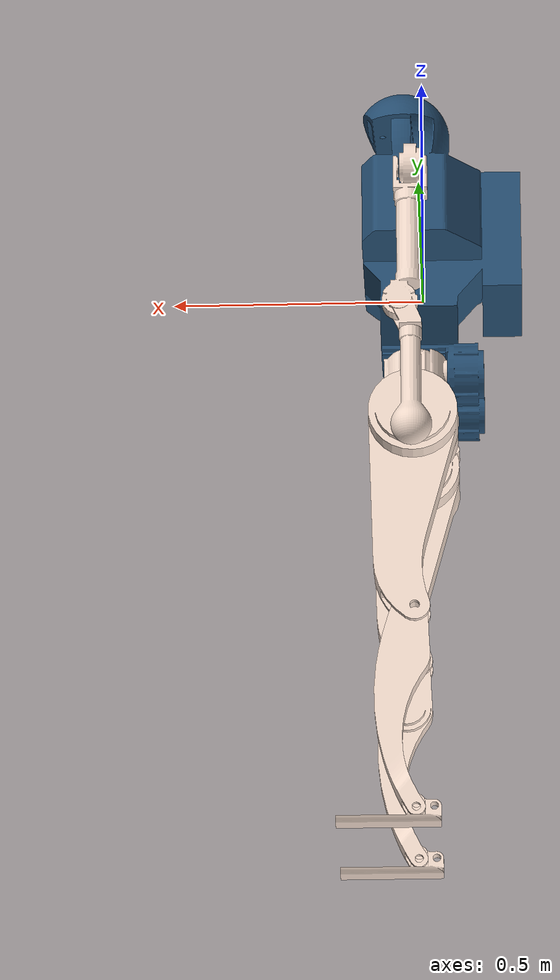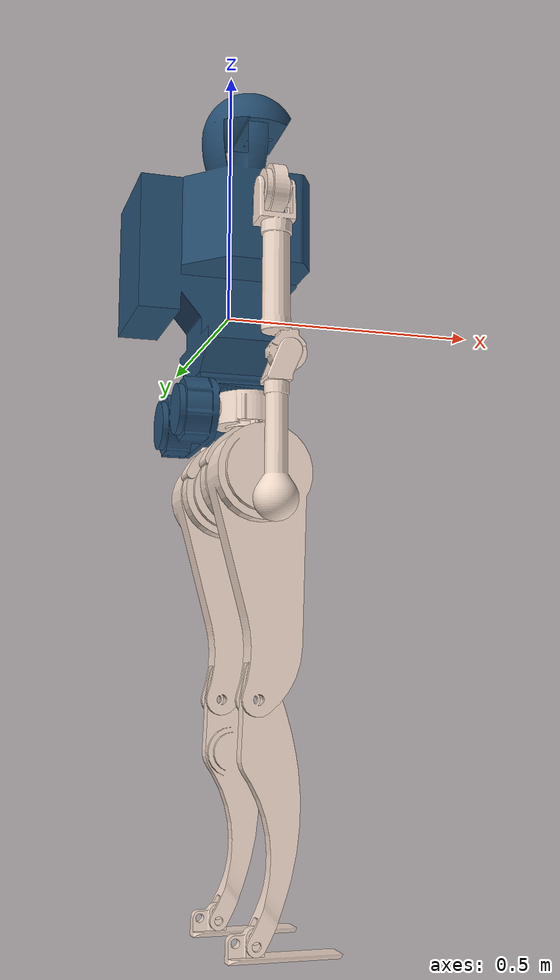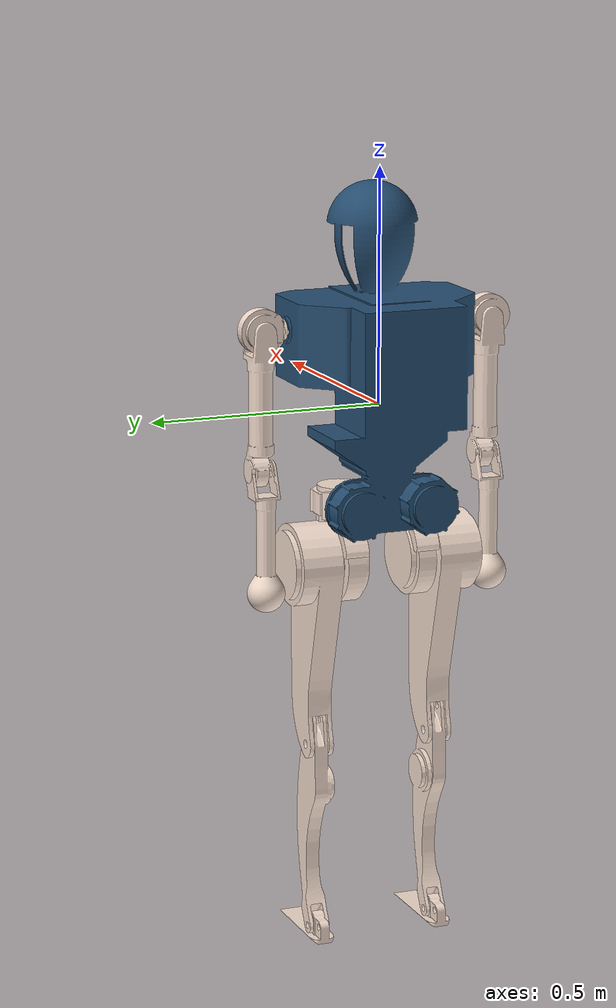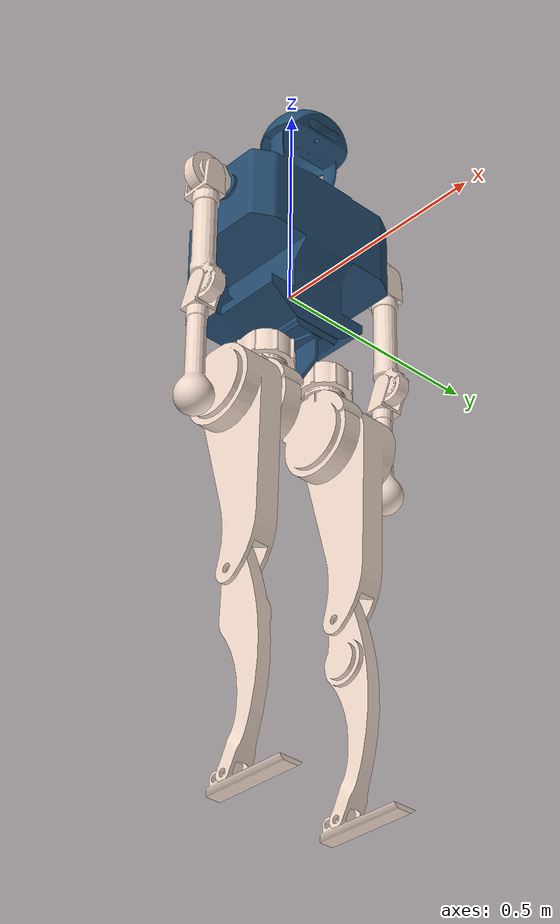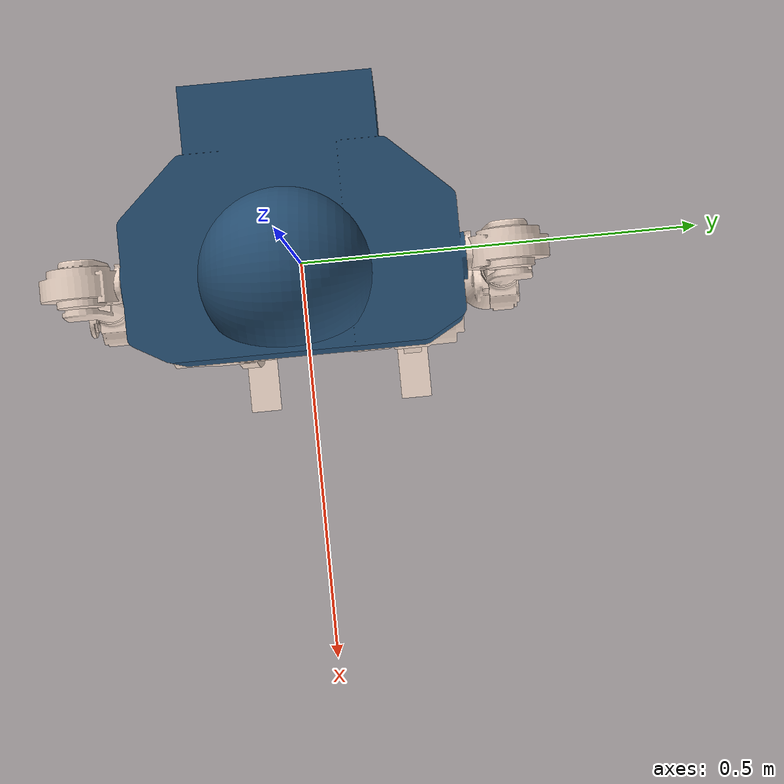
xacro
<?xml version="1.0" encoding="utf-8"?>

<robot name="h1" xmlns:xacro="http://www.ros.org/wiki/xacro">

    <xacro:include filename="$(find h1_description)/xacro/left_arm.xacro"/>
    <xacro:include filename="$(find h1_description)/xacro/right_arm.xacro"/>
    <xacro:include filename="$(find h1_description)/xacro/left_leg.xacro"/>
    <xacro:include filename="$(find h1_description)/xacro/right_leg.xacro"/>
    <xacro:include filename="$(find h1_description)/xacro/const.xacro"/>
    <xacro:include filename="$(find h1_description)/xacro/materials.xacro"/>
    <xacro:include filename="$(find h1_description)/xacro/gazebo.xacro"/>
    <xacro:include filename="$(find h1_description)/xacro/transmission.xacro"/>

    <link name="base_link">
        <visual>
            <origin rpy="0 0 0" xyz="0 0 0"/>
            <geometry>
                <mesh filename="package://h1_description/meshes/stl/base_link.STL" scale="1 1 1"/>
            </geometry>
            <material name="blue"/>
        </visual>
        <collision>
            <origin rpy="0 0 0" xyz="0 0 ${trunk_height/6-0.05}"/>
            <geometry>
                <box size="${trunk_length/1.5} ${trunk_width/1.5} ${trunk_height/1.5}"/>
            </geometry>
        </collision>
        <inertial>
            <origin rpy="0 0 0" xyz="${trunk_com_x} ${trunk_com_y} ${trunk_com_z}"/>
            <mass value="${trunk_mass}"/>
            <inertia
                    ixx="${trunk_ixx}" ixy="${trunk_ixy}" ixz="${trunk_ixz}"
                    iyy="${trunk_iyy}" iyz="${trunk_iyz}"
                    izz="${trunk_izz}"/>
        </inertial>
    </link>

    <joint name="imu_joint" type="fixed">
        <origin rpy="0. 0. 0." xyz="0. 0. 0"/>
        <parent link="base_link"/>
        <child link="imu_link"/>
    </joint>
    <!-- Imu link -->
    <link name="imu_link">
        <inertial>
            <mass value="0.01"/>
            <origin rpy="0 0 0" xyz="0 0 0"/>
            <inertia ixx="0.000001" ixy="0" ixz="0" iyy="0.000001" iyz="0" izz="0.000001"/>
        </inertial>
        <visual>
            <origin rpy="0 0 0" xyz="0 0 0"/>
            <geometry>
                <box size="0.015 0.015 0.004"/>
            </geometry>
        </visual>
        <material name="orange">
            <color rgba="255 108 10 255"/>
        </material>
    </link>

   <xacro:right_arm/>
   <xacro:left_arm/>
   <xacro:right_leg/>
   <xacro:left_leg/>
   <xacro:leg_trans/>

</robot>

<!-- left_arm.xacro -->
<robot xmlns:xacro="http://www.ros.org/wiki/xacro">

    <xacro:macro name = "left_arm">

        <joint name="arm_l1_joint" type="fixed">
            <origin rpy="0 0 0" xyz="0.02 0.255 0.170"/>
            <parent link="base_link"/>
            <child link="arm_l1_link"/>
            <axis xyz="0 1 0"/>
            <dynamics damping="${damping}" friction="${friction}"/>
            <limit effort="${arm_link1_torque_max}" velocity="${arm_link1_velocity_max}" lower="${arm_link1_min}"
                       upper="${arm_link1_max}"/>
        </joint>

        <link name="arm_l1_link">
            <visual>
            <origin rpy="0 0 0" xyz="0 0 0"/>
                <geometry>
                    <mesh filename="package://h1_description/meshes/stl/arm_l1_link.STL"
                          scale="1 1 1"/>
                </geometry>
                <material name="brown"/>
            </visual>
            <collision>
            <origin rpy="0 ${pi/2.0} 0" xyz="0 0 0"/>
                <geometry>
                    <cylinder length="${arm_l1_link_length * 0.5}" radius="${arm_l1_link_radius * 0.9}"/>
                </geometry>
            </collision>
            <inertial>
                <origin rpy="0 0 0" xyz="${arm_l1_link_com_x} ${arm_l1_link_com_y} ${arm_l1_link_com_z}"/>
                <mass value="${arm_l1_link_mass}"/>
                <inertia
                        ixx="${arm_l1_link_ixx}" ixy="${arm_l1_link_ixy}" ixz="${arm_l1_link_ixz}"
                        iyy="${arm_l1_link_iyy}" iyz="${arm_l1_link_iyz}"
                        izz="${arm_l1_link_izz}"/>
            </inertial>
        </link>

        <joint name="arm_l2_joint" type="fixed">
            <origin rpy="0 0 0" xyz="0 0 0"/>
            <parent link="arm_l1_link"/>
            <child link="arm_l2_link"/>
            <axis xyz="1 0 0"/>
            <dynamics damping="${damping}" friction="${friction}"/>
                <limit effort="${arm_link2_torque_max}" velocity="${arm_link2_velocity_max}" lower="${arm_l2_link_min}"
                   upper="${arm_l2_link_max}"/>
        </joint>

        <link name="arm_l2_link">
            <visual>
                <origin rpy="0 0 0" xyz="0 0 0"/>
                <geometry>
                        <mesh filename="package://h1_description/meshes/stl/arm_l2_link.STL"
                              scale="1 1 1"/>
                </geometry>
                <material name="brown"/>
            </visual>
            <collision>
                <origin rpy="0 ${pi/2.0} 0" xyz="0 0 ${-arm_l2_link_length/2.0 - arm_l1_link_radius}"/>
                <geometry>
                    <box size="${arm_l2_link_length} ${arm_l2_link_width * 0.8} ${arm_l2_link_height * 0.8}"/>
                </geometry>
            </collision>
            <inertial>
                <origin rpy="0 0 0" xyz="${arm_l2_link_com_x} ${arm_l2_link_com_y} ${arm_l2_link_com_z}"/>
                <mass value="${arm_l2_link_mass}"/>
                <inertia
                        ixx="${arm_l2_link_ixx}" ixy="${arm_l2_link_ixy}" ixz="${arm_l2_link_ixz}"
                        iyy="${arm_l2_link_iyy}" iyz="${arm_l2_link_iyz}"
                        izz="${arm_l2_link_izz}"/>
            </inertial>
        </link>

        <joint name="arm_l3_joint" type="fixed">
        <origin rpy="0 0 0" xyz="0.022 -0.007 -0.30"/>
            <parent link="arm_l2_link"/>
            <child link="arm_l3_link"/>
            <axis xyz="0 1 0"/>
            <dynamics damping="${damping}" friction="${friction}"/>
            <limit effort="${arm_link3_torque_max}" velocity="${arm_link3_velocity_max}" lower="${arm_link3_min}"
                       upper="${arm_link3_max}"/>
        </joint>

        <link name="arm_l3_link">
            <visual>
                <origin rpy="0 0 0" xyz="0 0 0"/>
                <geometry>
                    <mesh filename="package://h1_description/meshes/stl/arm_l3_link.STL"
                          scale="1 1 1"/>
                </geometry>
                <material name="brown"/>
            </visual>
            <collision>
                <origin rpy="0 ${pi/2.0} 0" xyz="0 0 ${-arm_l3_link_length/2.0}"/>
                <geometry>
                    <box size="${arm_l3_link_length * 0.8} ${arm_l3_link_width * 0.6} ${arm_l3_link_height * 0.6}"/>
                </geometry>
            </collision>
            <inertial>
                <origin rpy="0 0 0" xyz="${arm_l3_link_com_x} ${arm_l3_link_com_y} ${arm_l3_link_com_z}"/>
                <mass value="${arm_l3_link_mass}"/>
                <inertia
                        ixx="${arm_l3_link_ixx}" ixy="${arm_l3_link_ixy}" ixz="${arm_l3_link_ixz}"
                        iyy="${arm_l3_link_iyy}" iyz="${arm_l3_link_iyz}"
                        izz="${arm_l3_link_izz}"/>
            </inertial>
        </link>
    </xacro:macro>
</robot>

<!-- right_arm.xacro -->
<robot xmlns:xacro="http://www.ros.org/wiki/xacro">

    <xacro:include filename="$(find h1_description)/xacro/transmission.xacro"/>

    <xacro:macro name="right_arm">

        <joint name="arm_r1_joint" type="fixed">
       <origin rpy="0 0 0" xyz="0.02 -0.255 0.170"/>
            <parent link="base_link"/>
            <child link="arm_r1_link"/>
            <axis xyz="0 1 0"/>
            <dynamics damping="${damping}" friction="${friction}"/>
            <limit effort="${arm_link1_torque_max}" velocity="${arm_link1_velocity_max}" lower="${arm_link1_min}"
                       upper="${arm_link1_max}"/>
        </joint>

        <link name="arm_r1_link">
            <visual>
             <origin rpy="0 0 0" xyz="0 0 0"/>
                <geometry>
                    <mesh filename="package://h1_description/meshes/stl/arm_r1_link.STL"
                          scale="1 1 1"/>
                </geometry>
                <material name="brown"/>
            </visual>
            <collision>
                <origin rpy="0 ${pi/2.0} 0" xyz="0 0 0"/>
                <geometry>
                    <cylinder length="${arm_r1_link_length * 0.5}" radius="${arm_r1_link_radius * 0.9}"/>
                </geometry>
            </collision>
            <inertial>
                <origin rpy="0 0 0" xyz="${arm_r1_link_com_x} ${arm_r1_link_com_y} ${arm_r1_link_com_z}"/>
                <mass value="${arm_r1_link_mass}"/>
                <inertia
                        ixx="${arm_r1_link_ixx}" ixy="${arm_r1_link_ixy}" ixz="${arm_r1_link_ixz}"
                        iyy="${arm_r1_link_iyy}" iyz="${arm_r1_link_iyz}"
                        izz="${arm_r1_link_izz}"/>
            </inertial>
        </link>

        <joint name="arm_r2_joint" type="fixed">
            <origin rpy="0 0 0" xyz="0 0 0"/>
            <parent link="arm_r1_link"/>
            <child link="arm_r2_link"/>
            <axis xyz="1 0 0"/>
            <dynamics damping="${damping}" friction="${friction}"/>
                <limit effort="${arm_link2_torque_max}" velocity="${arm_link2_velocity_max}" lower="${arm_r2_link_min}"
                   upper="${arm_r2_link_max}"/>
        </joint>

        <link name="arm_r2_link">
            <visual>
                <origin rpy="0 0 0" xyz="0 0 0"/>
                <geometry>
                        <mesh filename="package://h1_description/meshes/stl/arm_r2_link.STL"
                              scale="1 1 1"/>
                </geometry>
                <material name="brown"/>
            </visual>

            <collision>
                <origin rpy="0 ${pi/2.0} 0" xyz="0 0 ${-arm_r2_link_length/2.0 - arm_r1_link_radius}"/>
                <geometry>
                    <box size="${arm_r2_link_length} ${arm_r2_link_width * 0.8} ${arm_r2_link_height * 0.8}"/>
                </geometry>
            </collision>

            <inertial>
                <origin rpy="0 0 0" xyz="${arm_r2_link_com_x} ${arm_r2_link_com_y} ${arm_r2_link_com_z}"/>
                <mass value="${arm_r2_link_mass}"/>
                <inertia
                        ixx="${arm_r2_link_ixx}" ixy="${arm_r2_link_ixy}" ixz="${arm_r2_link_ixz}"
                        iyy="${arm_r2_link_iyy}" iyz="${arm_r2_link_iyz}"
                        izz="${arm_r2_link_izz}"/>
            </inertial>
        </link>

        <joint name="arm_r3_joint" type="fixed">
            <origin rpy="0 0 0" xyz="0.022 -0.007 -0.30"/>
            <parent link="arm_r2_link"/>
            <child link="arm_r3_link"/>
            <axis xyz="0 1 0"/>
            <dynamics damping="${damping}" friction="${friction}"/>
            <limit effort="${arm_link3_torque_max}" velocity="${arm_link3_velocity_max}" lower="${arm_link3_min}"
                       upper="${arm_link3_max}"/>
        </joint>

        <link name="arm_r3_link">
            <visual>
                <origin rpy="0 0 0" xyz="0 0 0"/>
                <geometry>
                    <mesh filename="package://h1_description/meshes/stl/arm_r3_link.STL"
                          scale="1 1 1"/>
                </geometry>
                <material name="brown"/>
            </visual>
            <collision>
                <origin rpy="0 ${pi/2.0} 0" xyz="0 0 ${-arm_r3_link_length/2.0}"/>
                <geometry>
                    <box size="${arm_r3_link_length * 0.8} ${arm_r3_link_width * 0.6} ${arm_r3_link_height * 0.6}"/>
                </geometry>
            </collision>
            <inertial>
                <origin rpy="0 0 0" xyz="${arm_r3_link_com_x} ${arm_r3_link_com_y} ${arm_r3_link_com_z}"/>
                <mass value="${arm_r3_link_mass}"/>
                <inertia
                        ixx="${arm_r3_link_ixx}" ixy="${arm_r3_link_ixy}" ixz="${arm_r3_link_ixz}"
                        iyy="${arm_r3_link_iyy}" iyz="${arm_r3_link_iyz}"
                        izz="${arm_r3_link_izz}"/>
            </inertial>
        </link>
    </xacro:macro>
</robot>

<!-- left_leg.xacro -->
<robot xmlns:xacro="http://www.ros.org/wiki/xacro">

    <xacro:macro name="left_leg">

        <joint name="leg_l1_joint" type="revolute">
        <origin rpy="0 0 0" xyz="0.02 0.080 -0.202"/>
            <parent link="base_link"/>
            <child link="leg_l1_link"/>
            <axis xyz="1 0 0"/>
            <dynamics damping="${damping}" friction="${friction}"/>
            <limit effort="${leg_link2_torque_max}" velocity="${leg_link2_velocity_max}" lower="${leg_l1_link_min}"
                       upper="${leg_l1_link_max}"/>
        </joint>

        <link name="leg_l1_link">
            <visual>
             <origin rpy="0 0 0" xyz="0 0 0"/>
                <geometry>
                    <mesh filename="package://h1_description/meshes/stl/leg_l1_link.STL"
                          scale="1 1 1"/>
                </geometry>
                <material name="brown"/>
            </visual>
            <collision>
                <origin rpy="0 0 0" xyz="0 0 0"/>
                <geometry>
                    <cylinder length="${leg_l1_link_length}" radius="${leg_l1_link_radius * 0.9}"/>
                </geometry>
            </collision>
            <inertial>
                <origin rpy="0 0 0" xyz="${leg_l1_link_com_x} ${leg_l1_link_com_y} ${leg_l1_link_com_z}"/>
                <mass value="${leg_l1_link_mass}"/>
                <inertia
                        ixx="${leg_l1_link_ixx}" ixy="${leg_l1_link_ixy}" ixz="${leg_l1_link_ixz}"
                        iyy="${leg_l1_link_iyy}" iyz="${leg_l1_link_iyz}"
                        izz="${leg_l1_link_izz}"/>
            </inertial>
        </link>

        <joint name="leg_l2_joint" type="revolute">
            <origin rpy="0 0 0" xyz="0 -0.006 -0.13"/>
            <parent link="leg_l1_link"/>
            <child link="leg_l2_link"/>
            <axis xyz="0 0 1"/>
            <dynamics damping="${damping}" friction="${friction}"/>
                <limit effort="${leg_link2_torque_max}" velocity="${leg_link2_velocity_max}" lower="${leg_l2_link_min}"
                   upper="${leg_l2_link_max}"/>
        </joint>

        <link name="leg_l2_link">
            <visual>
                <origin rpy="0 0 0" xyz="0 0 0"/>
                <geometry>
                        <mesh filename="package://h1_description/meshes/stl/leg_l2_link.STL"
                              scale="1 1 1"/>
                </geometry>
                <material name="brown"/>
            </visual>
            <collision>
                <origin rpy="${pi/2} 0 0" xyz="0 0 0"/>
                <geometry>
                    <cylinder length="0.052" radius="0.087"/>
                </geometry>
            </collision>
            <inertial>
                <origin rpy="0 0 0" xyz="${leg_l2_link_com_x} ${leg_l2_link_com_y} ${leg_l2_link_com_z}"/>
                <mass value="${leg_l2_link_mass}"/>
                <inertia
                        ixx="${leg_l2_link_ixx}" ixy="${leg_l2_link_ixy}" ixz="${leg_l2_link_ixz}"
                        iyy="${leg_l2_link_iyy}" iyz="${leg_l2_link_iyz}"
                        izz="${leg_l2_link_izz}"/>
            </inertial>
        </link>

        <joint name="leg_l3_joint" type="revolute">
            <origin rpy="0 0 0" xyz="0 0.057 0"/>
            <parent link="leg_l2_link"/>
            <child link="leg_l3_link"/>
            <xacro:if value="${(convert_mit == 1)}">
                <axis xyz="0 -1 0"/>
                <dynamics damping="${damping}" friction="${friction}"/>
                <limit effort="${leg_link3_torque_max}" velocity="${leg_link3_velocity_max}" lower="${-leg_l3_link_max}"
                       upper="${-leg_l3_link_min}"/>
            </xacro:if>
            <xacro:if value="${(convert_mit == -1)}">
                <axis xyz="0 1 0"/>
                <dynamics damping="${damping}" friction="${friction}"/>
                <limit effort="${leg_link3_torque_max}" velocity="${leg_link3_velocity_max}" lower="${leg_l3_link_min}"
                       upper="${leg_l3_link_max}"/>
            </xacro:if>
        </joint>

        <link name="leg_l3_link">
            <visual>
                <origin rpy="0 0 0" xyz="0 0 0"/>
                <geometry>
                    <mesh filename="package://h1_description/meshes/stl/leg_l3_link.STL"
                          scale="1 1 1"/>
                </geometry>
                <material name="brown"/>
            </visual>
            <collision>
                <origin rpy="0 ${pi/2} 0" xyz="0.03 0 -0.200"/>
                <geometry>
                    <box size="0.3 0.05 0.05"/>
                </geometry>
            </collision>
            <inertial>
                <origin rpy="0 0 0" xyz="${leg_l3_link_com_x} ${leg_l3_link_com_y} ${leg_l3_link_com_z}"/>
                <mass value="${leg_l3_link_mass}"/>
                <inertia
                        ixx="${leg_l3_link_ixx}" ixy="${leg_l3_link_ixy}" ixz="${leg_l3_link_ixz}"
                        iyy="${leg_l3_link_iyy}" iyz="${leg_l3_link_iyz}"
                        izz="${leg_l3_link_izz}"/>
            </inertial>
        </link>

        <joint name="leg_l4_joint" type="revolute">
            <origin rpy="0 0 0" xyz="0 0 -0.400"/>
            <parent link="leg_l3_link"/>
            <child link="leg_l4_link"/>
            <xacro:if value="${(convert_mit == 1)}">
                <axis xyz="0 -1 0"/>
                <dynamics damping="${damping}" friction="${friction}"/>
                <limit effort="${leg_link3_torque_max}" velocity="${leg_link3_velocity_max}" lower="${-leg_l4_link_max}"
                       upper="${-leg_l4_link_min}"/>
            </xacro:if>
            <xacro:if value="${(convert_mit == -1)}">
                <axis xyz="0 1 0"/>
                <dynamics damping="${damping}" friction="${friction}"/>
                <limit effort="${leg_link3_torque_max}" velocity="${leg_link3_velocity_max}" lower="${leg_l4_link_min}"
                       upper="${leg_l4_link_max}"/>
            </xacro:if>
        </joint>

        <link name="leg_l4_link">
            <visual>
                <origin rpy="0 0 0" xyz="0 0 0"/>
                <geometry>
                    <mesh filename="package://h1_description/meshes/stl/leg_l4_link.STL"
                          scale="1 1 1"/>
                </geometry>
                <material name="brown"/>
            </visual>
            <collision>
                <origin rpy="0 ${pi/2.0} 0" xyz="0 0 -0.20"/>
                <geometry>
                    <box size="0.45 0.05 0.05"/>
                </geometry>
            </collision>
            <inertial>
                <origin rpy="0 0 0" xyz="${leg_l4_link_com_x} ${leg_l4_link_com_y} ${leg_l4_link_com_z}"/>
                <mass value="${leg_l4_link_mass}"/>
                <inertia
                        ixx="${leg_l4_link_ixx}" ixy="${leg_l4_link_ixy}" ixz="${leg_l4_link_ixz}"
                        iyy="${leg_l4_link_iyy}" iyz="${leg_l4_link_iyz}"
                        izz="${leg_l4_link_izz}"/>
            </inertial>
        </link>

        <joint name="leg_l5_joint" type="revolute">

            <origin rpy="0 0 0" xyz="0 0 ${-(leg_l4_link_length)}"/>
            <parent link="leg_l4_link"/>
            <child link="leg_l5_link"/>
            <axis xyz="0 1 0"/>
            <dynamics damping="${damping}" friction="${friction}"/>
            <limit effort="${leg_link4_torque_max}" velocity="${leg_link4_velocity_max}" lower="${leg_link5_min}"
                       upper="${leg_link5_max}"/>
        </joint>

        <link name="leg_l5_link">
            <visual>
                <origin rpy="0 0 0" xyz="0 0 0"/>
                <geometry>
                    <mesh filename="package://h1_description/meshes/stl/leg_l5_link.STL"
                          scale="1 1 1"/>
                </geometry>
                <material name="brown"/>
            </visual>
            <collision>
                <origin rpy="0 0 0" xyz="0.05 0 -0.04"/>
                <geometry>
                     <box size="${leg_l5_link_length} ${leg_l5_link_width} ${leg_l5_link_height}"/>
                </geometry>
            </collision>
            <inertial>
                <origin rpy="0 0 0" xyz="${leg_l5_link_com_x} ${leg_l5_link_com_y} ${leg_l5_link_com_z}"/>
                <mass value="${leg_l5_link_mass}"/>
                <inertia
                        ixx="${leg_l5_link_ixx}" ixy="${leg_l5_link_ixy}" ixz="${leg_l5_link_ixz}"
                        iyy="${leg_l5_link_iyy}" iyz="${leg_l5_link_iyz}"
                        izz="${leg_l5_link_izz}"/>
            </inertial>
        </link>

        <joint name="leg_l5_fixed_1" type="fixed">
            <origin xyz="0.12 0 -0.04" rpy="0 0 0" />
            <parent link="leg_l5_link" />
            <child link="leg_l_f1_link" />
        </joint>
        <link name="leg_l_f1_link">
            <inertial>
                <mass value="0.01" />
                <inertia ixx="0.000001" ixy="0" ixz="0" iyy="0.000001" iyz="0" izz="0.000001" />
            </inertial>
            <visual>
                <origin rpy="0 0 0" xyz="0 0 0"/>
                <geometry>
                    <sphere radius="0.001"/>
                </geometry>
            </visual>
            <collision>
                <origin rpy="0 0 0" xyz="0 0 0"/>
                <geometry>
                    <sphere radius="0.001"/>
                </geometry>
            </collision>
        </link>

        <joint name="leg_l5_fixed_2" type="fixed">
            <origin xyz="-0.01 0 -0.04" rpy="0 0 0" />
            <parent link="leg_l5_link" />
            <child link="leg_l_f2_link" />
        </joint>
        <link name="leg_l_f2_link">
            <inertial>
                <mass value="0.01" />
                <inertia ixx="0.000001" ixy="0" ixz="0" iyy="0.000001" iyz="0" izz="0.000001" />
            </inertial>
            <visual>
                <origin rpy="0 0 0" xyz="0 0 0"/>
                <geometry>
                    <sphere radius="0.001"/>
                </geometry>
            </visual>
            <collision>
                <origin rpy="0 0 0" xyz="-0 0 0"/>
                <geometry>
                    <sphere radius="0.001"/>
                </geometry>
            </collision>
        </link>
    </xacro:macro>
</robot>

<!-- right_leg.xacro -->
<robot xmlns:xacro="http://www.ros.org/wiki/xacro">

    <xacro:macro name="right_leg">

        <joint name="leg_r1_joint" type="revolute">
            <origin rpy="0 0 0" xyz="0.02 -0.080 -0.202"/>
            <parent link="base_link"/>
            <child link="leg_r1_link"/>
            <axis xyz="1 0 0"/>
            <dynamics damping="${damping}" friction="${friction}"/>
            <limit effort="${leg_link2_torque_max}" velocity="${leg_link2_velocity_max}" lower="${leg_r1_link_min}"
                       upper="${leg_r1_link_max}"/>
        </joint>

        <link name="leg_r1_link">
            <visual>
             <origin rpy="0 0 0" xyz="0 0 0"/>
                <geometry>
                    <mesh filename="package://h1_description/meshes/stl/leg_r1_link.STL"
                          scale="1 1 1"/>
                </geometry>
                <material name="brown"/>
            </visual>
            <collision>
                <origin rpy="0 0 0" xyz="0 0 0"/>
                <geometry>
                    <cylinder length="${leg_r1_link_length}" radius="${leg_r1_link_radius * 0.9}"/>
                </geometry>
            </collision>
            <inertial>
                <origin rpy="0 0 0" xyz="${leg_r1_link_com_x} ${leg_r1_link_com_y} ${leg_r1_link_com_z}"/>
                <mass value="${leg_r1_link_mass}"/>
                <inertia
                        ixx="${leg_r1_link_ixx}" ixy="${leg_r1_link_ixy}" ixz="${leg_r1_link_ixz}"
                        iyy="${leg_r1_link_iyy}" iyz="${leg_r1_link_iyz}"
                        izz="${leg_r1_link_izz}"/>
            </inertial>
        </link>

        <joint name="leg_r2_joint" type="revolute">
            <origin rpy="0 0 0" xyz="0 -0.006 -0.13"/>
            <parent link="leg_r1_link"/>
            <child link="leg_r2_link"/>
            <axis xyz="0 0 1"/>
            <dynamics damping="${damping}" friction="${friction}"/>
                <limit effort="${leg_link2_torque_max}" velocity="${leg_link2_velocity_max}" lower="${leg_r2_link_min}"
                   upper="${leg_r2_link_max}"/>
        </joint>

        <link name="leg_r2_link">
            <visual>
                <origin rpy="0 0 0" xyz="0 0 0"/>
                <geometry>
                        <mesh filename="package://h1_description/meshes/stl/leg_r2_link.STL"
                              scale="1 1 1"/>
                </geometry>
                <material name="brown"/>
            </visual>
            <collision>
                <origin rpy="${pi/2} 0 0" xyz="0.01 0 0"/>
                <geometry>
                    <cylinder length="${leg_r2_link_length}" radius="${leg_r2_link_radius}"/>
                </geometry>
            </collision>
            <inertial>
                <origin rpy="0 0 0" xyz="${leg_r2_link_com_x} ${leg_r2_link_com_y} ${leg_r2_link_com_z}"/>
                <mass value="${leg_r2_link_mass}"/>
                <inertia
                        ixx="${leg_r2_link_ixx}" ixy="${leg_r2_link_ixy}" ixz="${leg_r2_link_ixz}"
                        iyy="${leg_r2_link_iyy}" iyz="${leg_r2_link_iyz}"
                        izz="${leg_r2_link_izz}"/>
            </inertial>
        </link>

        <joint name="leg_r3_joint" type="revolute">
            <origin rpy="0 0 0" xyz="0 -0.057 0"/>
            <parent link="leg_r2_link"/>
            <child link="leg_r3_link"/>
            <xacro:if value="${(convert_mit == 1)}">
              <axis xyz="0 -1 0"/>
              <dynamics damping="${damping}" friction="${friction}"/>
              <limit effort="${leg_link3_torque_max}" velocity="${leg_link3_velocity_max}" lower="${-leg_r3_link_max}"
                     upper="${-leg_r3_link_min}"/>
            </xacro:if>
            <xacro:if value="${(convert_mit == -1)}">
              <axis xyz="0 1 0"/>
              <dynamics damping="${damping}" friction="${friction}"/>
              <limit effort="${leg_link3_torque_max}" velocity="${leg_link3_velocity_max}" lower="${leg_r3_link_min}"
                     upper="${leg_r3_link_max}"/>
            </xacro:if>
        </joint>

        <link name="leg_r3_link">
            <visual>
                <origin rpy="0 0 0" xyz="0 0 0"/>
                <geometry>
                    <mesh filename="package://h1_description/meshes/stl/leg_r3_link.STL"
                          scale="1 1 1"/>
                </geometry>
                <material name="brown"/>
            </visual>
            <collision>
                <origin rpy="0 ${pi/2} 0" xyz="0.03 0 -0.200"/>
                <geometry>
                    <box size="0.3 0.05 0.05"/>
                </geometry>
            </collision>
            <inertial>
                <origin rpy="0 0 0" xyz="${leg_r3_link_com_x} ${leg_r3_link_com_y} ${leg_r3_link_com_z}"/>
                <mass value="${leg_r3_link_mass}"/>
                <inertia
                        ixx="${leg_r3_link_ixx}" ixy="${leg_r3_link_ixy}" ixz="${leg_r3_link_ixz}"
                        iyy="${leg_r3_link_iyy}" iyz="${leg_r3_link_iyz}"
                        izz="${leg_r3_link_izz}"/>
            </inertial>
        </link>

        <joint name="leg_r4_joint" type="revolute">
            <origin rpy="0 0 0" xyz="0 0 -0.400"/>
            <parent link="leg_r3_link"/>
            <child link="leg_r4_link"/>
            <xacro:if value="${(convert_mit == 1)}">
              <axis xyz="0 -1 0"/>
              <dynamics damping="${damping}" friction="${friction}"/>
              <limit effort="${leg_link3_torque_max}" velocity="${leg_link3_velocity_max}" lower="${-leg_r4_link_max}"
                     upper="${-leg_r4_link_min}"/>
            </xacro:if>
            <xacro:if value="${(convert_mit == -1)}">
              <axis xyz="0 1 0"/>
              <dynamics damping="${damping}" friction="${friction}"/>
              <limit effort="${leg_link3_torque_max}" velocity="${leg_link3_velocity_max}" lower="${leg_r4_link_min}"
                     upper="${leg_r4_link_max}"/>
            </xacro:if>
        </joint>

        <link name="leg_r4_link">
            <visual>
                <origin rpy="0 0 0" xyz="0 0 0"/>
                <geometry>
                    <mesh filename="package://h1_description/meshes/stl/leg_r4_link.STL"
                          scale="1 1 1"/>
                </geometry>
                <material name="brown"/>
            </visual>
            <collision>
                <origin rpy="0 ${pi/2.0} 0" xyz="0 0 -0.20"/>
                <geometry>
                    <box size="0.45 0.05 0.05"/>
                </geometry>
            </collision>
            <inertial>
                <origin rpy="0 0 0" xyz="${leg_r4_link_com_x} ${leg_r4_link_com_y} ${leg_r4_link_com_z}"/>
                <mass value="${leg_r4_link_mass}"/>
                <inertia
                        ixx="${leg_r4_link_ixx}" ixy="${leg_r4_link_ixy}" ixz="${leg_r4_link_ixz}"
                        iyy="${leg_r4_link_iyy}" iyz="${leg_r4_link_iyz}"
                        izz="${leg_r4_link_izz}"/>
            </inertial>
        </link>

        <joint name="leg_r5_joint" type="revolute">
            <origin rpy="0 0 0" xyz="0 0 ${-(leg_r4_link_length)}"/>
            <parent link="leg_r4_link"/>
            <child link="leg_r5_link"/>
            <axis xyz="0 1 0"/>
            <dynamics damping="${damping}" friction="${friction}"/>
            <limit effort="${leg_link4_torque_max}" velocity="${leg_link4_velocity_max}" lower="${leg_link5_min}"
                       upper="${leg_link5_max}"/>
        </joint>

        <link name="leg_r5_link">
            <visual>
                <origin rpy="0 0 0" xyz="0 0 0"/>
                <geometry>
                    <mesh filename="package://h1_description/meshes/stl/leg_r5_link.STL"
                          scale="1 1 1"/>
                </geometry>
                <material name="brown"/>
            </visual>
            <collision>
                <origin rpy="0 0 0" xyz="0.05 0 -0.04"/>
                <geometry>
                     <box size="${leg_r5_link_length} ${leg_r5_link_width} ${leg_r5_link_height}"/>
                </geometry>
            </collision>
            <inertial>
                <origin rpy="0 0 0" xyz="${leg_r5_link_com_x} ${leg_r5_link_com_y} ${leg_r5_link_com_z}"/>
                <mass value="${leg_r5_link_mass}"/>
                <inertia
                        ixx="${leg_r5_link_ixx}" ixy="${leg_r5_link_ixy}" ixz="${leg_r5_link_ixz}"
                        iyy="${leg_r5_link_iyy}" iyz="${leg_r5_link_iyz}"
                        izz="${leg_r5_link_izz}"/>
            </inertial>
        </link>

      <joint name="leg_r5_fixed_1" type="fixed">
        <origin xyz="0.12 0 -0.04" rpy="0 0 0" />
        <parent link="leg_r5_link" />
        <child link="leg_r_f1_link" />
      </joint>
      <link name="leg_r_f1_link">
        <inertial>
          <mass value="0.01" />
          <inertia ixx="0.000001" ixy="0" ixz="0" iyy="0.000001" iyz="0" izz="0.000001" />
        </inertial>
        <visual>
          <origin rpy="0 0 0" xyz="0 0 0"/>
          <geometry>
            <sphere radius="0.001"/>
          </geometry>
        </visual>
        <collision>
          <origin rpy="0 0 0" xyz="0 0 0"/>
          <geometry>
            <sphere radius="0.001"/>
          </geometry>
        </collision>
      </link>

      <joint name="leg_r5_fixed_2" type="fixed">
        <origin xyz="-0.01 0 -0.04" rpy="0 0 0" />
        <parent link="leg_r5_link" />
        <child link="leg_r_f2_link" />
      </joint>
      <link name="leg_r_f2_link">
        <inertial>
          <mass value="0.01" />
          <inertia ixx="0.000001" ixy="0" ixz="0" iyy="0.000001" iyz="0" izz="0.000001" />
        </inertial>
        <visual>
          <origin rpy="0 0 0" xyz="0 0 0"/>
          <geometry>
            <sphere radius="0.001"/>
          </geometry>
        </visual>
        <collision>
          <origin rpy="0 0 0" xyz="0 0 0"/>
          <geometry>
            <sphere radius="0.001"/>
          </geometry>
        </collision>
      </link>
    </xacro:macro>
</robot>

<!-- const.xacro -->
<robot xmlns:xacro="http://www.ros.org/wiki/xacro" name="robot_description">
    <!--gazebo自由加载模型摔倒由于大腿长度与小腿关节范围导致的-->
    <!-- Constants for robot dimensions -->
    <xacro:property name="stick_mass" value="0.00001"/>
    <xacro:property name="rotate_order" value="-1"/>
    <xacro:property name="convert_mit" value="1"/>

    <!-- simplified collision value -->
    <xacro:property name="trunk_width" value="0.390"/>
    <xacro:property name="trunk_length" value="0.238"/>
    <xacro:property name="trunk_height" value="0.503"/>

    <xacro:property name="arm_l1_link_radius" value="0.045"/>
    <xacro:property name="arm_l1_link_length" value="0.08"/>
    <xacro:property name="arm_r1_link_radius" value="0.045"/>
    <xacro:property name="arm_r1_link_length" value="0.08"/>

    <xacro:property name="leg_l2_link_radius" value="0.087"/>
    <xacro:property name="leg_l2_link_length" value="0.052"/>
    <xacro:property name="leg_l1_link_radius" value="0.062"/>
    <xacro:property name="leg_l1_link_length" value="0.05"/>
    <xacro:property name="leg_r1_link_radius" value="0.062"/>
    <xacro:property name="leg_r1_link_length" value="0.05"/>
    <xacro:property name="leg_r2_link_radius" value="0.087"/>
    <xacro:property name="leg_r2_link_length" value="0.052"/>

    <xacro:property name="arm_l2_link_width" value="0.059"/>
    <xacro:property name="arm_l2_link_height" value="0.04"/>
    <xacro:property name="arm_r2_link_width" value="0.059"/>
    <xacro:property name="arm_r2_link_height" value="0.04"/>

    <xacro:property name="leg_l3_link_width" value="0.1"/>
    <xacro:property name="leg_l3_link_height" value="0.1"/>
    <xacro:property name="leg_r3_link_width" value="0.1"/>
    <xacro:property name="leg_r3_link_height" value="0.1"/>

    <xacro:property name="leg_l4_link_width" value="0.100"/>
    <xacro:property name="leg_l4_link_height" value="0.050"/>
    <xacro:property name="leg_r4_link_width" value="0.100"/>
    <xacro:property name="leg_r4_link_height" value="0.050"/>

    <xacro:property name="arm_l3_link_width" value="0.07"/>
    <xacro:property name="arm_l3_link_height" value="0.09"/>
    <xacro:property name="arm_r3_link_width" value="0.07"/>
    <xacro:property name="arm_r3_link_height" value="0.09"/>

    <!-- lelffoot value -->
    <xacro:property name="leg_l5_link_length" value="0.200"/>
    <xacro:property name="leg_l5_link_width" value="0.053"/>
    <xacro:property name="leg_l5_link_height" value="0.010"/>
    <xacro:property name="leg_l5_link_mass" value=" 0.325911"/>
    <xacro:property name="leg_l5_link_com_x" value="0.033343"/>
    <xacro:property name="leg_l5_link_com_y" value="0.0"/>
    <xacro:property name="leg_l5_link_com_z" value="-0.028227"/>
    <xacro:property name="leg_l5_link_ixx" value="0.000104"/>
    <xacro:property name="leg_l5_link_ixy" value="0.0"/>
    <xacro:property name="leg_l5_link_ixz" value="-0.000115"/>
    <xacro:property name="leg_l5_link_iyy" value="0.001122"/>
    <xacro:property name="leg_l5_link_iyz" value="0.0"/>
    <xacro:property name="leg_l5_link_izz" value=" 0.001104"/>

    <!-- rightfoot value -->
    <xacro:property name="leg_r5_link_length" value="0.200"/>
    <xacro:property name="leg_r5_link_width" value="0.053"/>
    <xacro:property name="leg_r5_link_height" value="0.010"/>
    <xacro:property name="leg_r5_link_mass" value=" 0.325911 "/>
    <xacro:property name="leg_r5_link_com_x" value="0.033343"/>
    <xacro:property name="leg_r5_link_com_y" value="0.0"/>
    <xacro:property name="leg_r5_link_com_z" value="-0.028227"/>
    <xacro:property name="leg_r5_link_ixx" value="0.000104"/>
    <xacro:property name="leg_r5_link_ixy" value="0.0"/>
    <xacro:property name="leg_r5_link_ixz" value="-0.000115"/>
    <xacro:property name="leg_r5_link_iyy" value="0.001122"/>
    <xacro:property name="leg_r5_link_iyz" value="0.0"/>
    <xacro:property name="leg_r5_link_izz" value="0.001104"/>

    <!-- kinematic value -->
    <xacro:property name="arm_l2_link_length" value="0.220"/>
    <xacro:property name="arm_r2_link_length" value="0.220"/>
    <xacro:property name="arm_l3_link_length" value="0.300"/>
    <xacro:property name="arm_r3_link_length" value="0.300"/>

    <xacro:property name="leg_l3_link_length" value="0.400"/>
    <xacro:property name="leg_r3_link_length" value="0.400"/>
    <xacro:property name="leg_l4_link_length" value="0.400"/>
    <xacro:property name="leg_r4_link_length" value="0.400"/>

    <!-- joint limits -->     <!-- need change for zhi -->
    <xacro:property name="damping" value="0"/>
    <xacro:property name="friction" value="0"/>
    <xacro:property name="arm_link1_velocity_max" value="40"/>
    <xacro:property name="arm_link1_torque_max" value="24"/>
    <xacro:property name="leg_link2_velocity_max" value="45"/>
    <xacro:property name="leg_link2_torque_max" value="144"/>
    <xacro:property name="leg_link3_velocity_max" value="45"/>
    <xacro:property name="leg_link3_torque_max" value="200"/>
    <xacro:property name="leg_link4_velocity_max" value="40"/>
    <xacro:property name="leg_link4_torque_max" value="48"/>
    <xacro:property name="arm_link2_velocity_max" value="40"/>
    <xacro:property name="arm_link2_torque_max" value="24"/>
    <xacro:property name="arm_link3_velocity_max" value="30"/>
    <xacro:property name="arm_link3_torque_max" value="12"/>

    <!-- joint limits -->   <!-- need change for zhi -->
    <xacro:property name="arm_link1_max" value="${90*pi/180.0}"/>
    <xacro:property name="arm_link1_min" value="${-180*pi/180.0}"/>
    <xacro:property name="arm_r2_link_max" value="${0*pi/180.0}"/>
    <xacro:property name="arm_r2_link_min" value="${-166*pi/180.0}"/>
    <xacro:property name="arm_l2_link_max" value="${166*pi/180.0}"/>
    <xacro:property name="arm_l2_link_min" value="${0*pi/180.0}"/>
    <xacro:property name="arm_link3_max" value="${40*pi/180.0}"/>
    <xacro:property name="arm_link3_min" value="${-165*pi/180.0}"/>
    <xacro:property name="leg_l1_link_max" value="${28*pi/180.0}"/>
    <xacro:property name="leg_l1_link_min" value="${-12*pi/180.0}"/>
    <xacro:property name="leg_r1_link_max" value="${12*pi/180.0}"/>
    <xacro:property name="leg_r1_link_min" value="${-28*pi/180.0}"/>
    <xacro:property name="leg_l2_link_max" value="${30*pi/180.0}"/>
    <xacro:property name="leg_l2_link_min" value="${-12*pi/180.0}"/>
    <xacro:property name="leg_r2_link_max" value="${12*pi/180.0}"/>
    <xacro:property name="leg_r2_link_min" value="${-30*pi/180.0}"/>
    <xacro:property name="leg_r3_link_max" value="${65*pi/180.0}"/>
    <xacro:property name="leg_r3_link_min" value="${-76.5*pi/180.0}"/>
    <xacro:property name="leg_l3_link_max" value="${65*pi/180.0}"/>
    <xacro:property name="leg_l3_link_min" value="${-76.5*pi/180.0}"/>
    <xacro:property name="leg_r4_link_max" value="${143*pi/180.0}"/>
    <xacro:property name="leg_r4_link_min" value="${0*pi/180.0}"/>
    <xacro:property name="leg_l4_link_max" value="${143*pi/180.0}"/>
    <xacro:property name="leg_l4_link_min" value="${0*pi/180.0}"/>
    <xacro:property name="leg_link5_max" value="${69*pi/180.0}"/>
    <xacro:property name="leg_link5_min" value="${-85*pi/180.0}"/>
    <!-- dynamics inertial value -->
    <!-- trunk   change-->
    <xacro:property name="trunk_mass" value="14.000000"/>
    <xacro:property name="trunk_com_x" value=" -0.029148"/>
    <xacro:property name="trunk_com_y" value="-0.000086"/>
    <xacro:property name="trunk_com_z" value="0.009226"/>
    <xacro:property name="trunk_ixx" value=" 0.487006"/>
    <xacro:property name="trunk_ixy" value="-0.000034"/>
    <xacro:property name="trunk_ixz" value=" 0.044679"/>
    <xacro:property name="trunk_iyy" value="0.427603"/>
    <xacro:property name="trunk_iyz" value=" -0.000037"/>
    <xacro:property name="trunk_izz" value=" 0.219108"/>

    <!-- hip (left leg) add new-->
    <xacro:property name="leg_l2_link_mass" value="2.697319"/>
    <xacro:property name="leg_l2_link_com_x" value="-0.001279"/>
    <xacro:property name="leg_l2_link_com_y" value="-0.000020"/>
    <xacro:property name="leg_l2_link_com_z" value="0.007954"/>
    <xacro:property name="leg_l2_link_ixx" value="0.007300"/>
    <xacro:property name="leg_l2_link_ixy" value="0.000004"/>
    <xacro:property name="leg_l2_link_ixz" value="0.000181"/>
    <xacro:property name="leg_l2_link_iyy" value="0.012500"/>
    <xacro:property name="leg_l2_link_iyz" value="0.000082"/>
    <xacro:property name="leg_l2_link_izz" value="0.006774"/>

     <!-- hip (right leg) add new-->
    <xacro:property name="leg_r2_link_mass" value="2.697319"/>
    <xacro:property name="leg_r2_link_com_x" value="-0.001279"/>
    <xacro:property name="leg_r2_link_com_y" value="0.000020"/>
    <xacro:property name="leg_r2_link_com_z" value="0.007954"/>
    <xacro:property name="leg_r2_link_ixx" value="0.007300"/>
    <xacro:property name="leg_r2_link_ixy" value="-0.000004"/>
    <xacro:property name="leg_r2_link_ixz" value="0.000181"/>
    <xacro:property name="leg_r2_link_iyy" value="0.012500"/>
    <xacro:property name="leg_r2_link_iyz" value="-0.000082"/>
    <xacro:property name="leg_r2_link_izz" value=" 0.006774"/>

    <!-- waist (left leg) add new-->
    <xacro:property name="leg_l1_link_mass" value="1.682739"/>
    <xacro:property name="leg_l1_link_com_x" value="-0.004667"/>
    <xacro:property name="leg_l1_link_com_y" value="0.000931"/>
    <xacro:property name="leg_l1_link_com_z" value="-0.005738"/>
    <xacro:property name="leg_l1_link_ixx" value="0.001819"/>
    <xacro:property name="leg_l1_link_ixy" value="0.000017"/>
    <xacro:property name="leg_l1_link_ixz" value="-0.000066"/>
    <xacro:property name="leg_l1_link_iyy" value="0.002122"/>
    <xacro:property name="leg_l1_link_iyz" value="-0.000016"/>
    <xacro:property name="leg_l1_link_izz" value="0.002855"/>

    <xacro:property name="leg_r1_link_mass" value="1.682739"/>
    <xacro:property name="leg_r1_link_com_x" value="-0.004667"/>
    <xacro:property name="leg_r1_link_com_y" value="0.000931"/>
    <xacro:property name="leg_r1_link_com_z" value="-0.005738"/>
    <xacro:property name="leg_r1_link_ixx" value="0.001819"/>
    <xacro:property name="leg_r1_link_ixy" value="0.000017"/>
    <xacro:property name="leg_r1_link_ixz" value="-0.000066"/>
    <xacro:property name="leg_r1_link_iyy" value="0.002122"/>
    <xacro:property name="leg_r1_link_iyz" value="-0.000016"/>
    <xacro:property name="leg_r1_link_izz" value="0.002855"/>

    <!-- hip (left front) change -->
    <xacro:property name="arm_l1_link_mass" value="0.622855"/>
    <xacro:property name="arm_l1_link_com_x" value="-0.000475"/>
    <xacro:property name="arm_l1_link_com_y" value="-0.002959"/>
    <xacro:property name="arm_l1_link_com_z" value="0.000030"/>
    <xacro:property name="arm_l1_link_ixx" value="0.000655"/>
    <xacro:property name="arm_l1_link_ixy" value="-0.000007"/>
    <xacro:property name="arm_l1_link_ixz" value="0.000001"/>
    <xacro:property name="arm_l1_link_iyy" value="0.000379"/>
    <xacro:property name="arm_l1_link_iyz" value="0.000002"/>
    <xacro:property name="arm_l1_link_izz" value="0.000431"/>

    <!-- hip (right Arm) change -->
    <xacro:property name="arm_r1_link_mass" value="0.622855"/>
    <xacro:property name="arm_r1_link_com_x" value="0.000675"/>
    <xacro:property name="arm_r1_link_com_y" value="0.002958"/>
    <xacro:property name="arm_r1_link_com_z" value="0.000120"/>
    <xacro:property name="arm_r1_link_ixx" value="0.000655"/>
    <xacro:property name="arm_r1_link_ixy" value="0.000007"/>
    <xacro:property name="arm_r1_link_ixz" value="0.000001"/>
    <xacro:property name="arm_r1_link_iyy" value="0.000378"/>
    <xacro:property name="arm_r1_link_iyz" value="0.000000"/>
    <xacro:property name="arm_r1_link_izz" value="0.000431"/>

    <!-- thigh   change-->
    <xacro:property name="arm_l2_link_mass" value=" 0.686346 "/>
    <xacro:property name="arm_l2_link_com_x" value="-0.012334"/>
    <xacro:property name="arm_l2_link_com_y" value="-0.000655"/>
    <xacro:property name="arm_l2_link_com_z" value="0.111803"/>
    <xacro:property name="arm_l2_link_ixx" value="0.009735"/>
    <xacro:property name="arm_l2_link_ixy" value="-0.000006"/>
    <xacro:property name="arm_l2_link_ixz" value=" -0.000765"/>
    <xacro:property name="arm_l2_link_iyy" value=" 0.009958"/>
    <xacro:property name="arm_l2_link_iyz" value=" 0.000050"/>
    <xacro:property name="arm_l2_link_izz" value="0.000460"/>

    <!-- thigh (right Arm)  change-->
    <xacro:property name="arm_r2_link_mass" value="0.686346"/>
    <xacro:property name="arm_r2_link_com_x" value="0.007666"/>
    <xacro:property name="arm_r2_link_com_y" value="-0.000655"/>
    <xacro:property name="arm_r2_link_com_z" value=" -0.187497"/>
    <xacro:property name="arm_r2_link_ixx" value="0.009735"/>
    <xacro:property name="arm_r2_link_ixy" value="-0.000006"/>
    <xacro:property name="arm_r2_link_ixz" value=" -0.000765"/>
    <xacro:property name="arm_r2_link_iyy" value="0.009958"/>
    <xacro:property name="arm_r2_link_iyz" value="0.000050"/>
    <xacro:property name="arm_r2_link_izz" value=" 0.000460"/>

    <!-- lelfleg thigh   change-->
    <xacro:property name="leg_l3_link_mass" value="6.133134"/>
    <xacro:property name="leg_l3_link_com_x" value="0.010801"/>
    <xacro:property name="leg_l3_link_com_y" value="0.015919"/>
    <xacro:property name="leg_l3_link_com_z" value="-0.088156"/>
    <xacro:property name="leg_l3_link_ixx" value=" 0.123582"/>
    <xacro:property name="leg_l3_link_ixy" value="-0.001076"/>
    <xacro:property name="leg_l3_link_ixz" value="-0.007036"/>
    <xacro:property name="leg_l3_link_iyy" value=" 0.126866"/>
    <xacro:property name="leg_l3_link_iyz" value=" 0.008649"/>
    <xacro:property name="leg_l3_link_izz" value=" 0.011662"/>

    <!-- rightleg thigh   change-->
    <xacro:property name="leg_r3_link_mass" value=" 6.133134 "/>
    <xacro:property name="leg_r3_link_com_x" value=" 0.010801"/>
    <xacro:property name="leg_r3_link_com_y" value="-0.015919"/>
    <xacro:property name="leg_r3_link_com_z" value="-0.088156"/>
    <xacro:property name="leg_r3_link_ixx" value=" 0.123582"/>
    <xacro:property name="leg_r3_link_ixy" value="0.001076"/>
    <xacro:property name="leg_r3_link_ixz" value="-0.007036"/>
    <xacro:property name="leg_r3_link_iyy" value="0.126866"/>
    <xacro:property name="leg_r3_link_iyz" value="-0.008649"/>
    <xacro:property name="leg_r3_link_izz" value="0.011662"/>

    <!--lelfleg calf  change-->
    <xacro:property name="leg_l4_link_mass" value=" 2.757724"/>
    <xacro:property name="leg_l4_link_com_x" value="0.013580"/>
    <xacro:property name="leg_l4_link_com_y" value="0.005401"/>
    <xacro:property name="leg_l4_link_com_z" value="-0.186760"/>
    <xacro:property name="leg_l4_link_ixx" value="0.052429"/>
    <xacro:property name="leg_l4_link_ixy" value="-0.000618"/>
    <xacro:property name="leg_l4_link_ixz" value="0.002695"/>
    <xacro:property name="leg_l4_link_iyy" value="0.053962"/>
    <xacro:property name="leg_l4_link_iyz" value="-0.002004"/>
    <xacro:property name="leg_l4_link_izz" value="0.003135"/>

    <!--rightleg calf  change-->
    <xacro:property name="leg_r4_link_mass" value="2.757724"/>
    <xacro:property name="leg_r4_link_com_x" value="0.013580"/>
    <xacro:property name="leg_r4_link_com_y" value="-0.005401"/>
    <xacro:property name="leg_r4_link_com_z" value="-0.186760"/>
    <xacro:property name="leg_r4_link_ixx" value="0.052429"/>
    <xacro:property name="leg_r4_link_ixy" value="0.000618"/>
    <xacro:property name="leg_r4_link_ixz" value="0.002695"/>
    <xacro:property name="leg_r4_link_iyy" value="0.053962"/>
    <xacro:property name="leg_r4_link_iyz" value="0.002004"/>
    <xacro:property name="leg_r4_link_izz" value="0.003135"/>

    <!-- calf   change-->
    <xacro:property name="arm_l3_link_mass" value=" 0.490185"/>
    <xacro:property name="arm_l3_link_com_x" value="-0.018007"/>
    <xacro:property name="arm_l3_link_com_y" value="0.000613"/>
    <xacro:property name="arm_l3_link_com_z" value="-0.177358"/>
    <xacro:property name="arm_l3_link_ixx" value="0.005496"/>
    <xacro:property name="arm_l3_link_ixy" value="0.000002"/>
    <xacro:property name="arm_l3_link_ixz" value=" 0.000169"/>
    <xacro:property name="arm_l3_link_iyy" value=" 0.005477"/>
    <xacro:property name="arm_l3_link_iyz" value=" 0.000045"/>
    <xacro:property name="arm_l3_link_izz" value="0.000317"/>

    <!-- rightarm calf change-->
    <xacro:property name="arm_r3_link_mass" value=" 0.490185"/>
    <xacro:property name="arm_r3_link_com_x" value="0.070594"/>
    <xacro:property name="arm_r3_link_com_y" value="0.0473114"/>
    <xacro:property name="arm_r3_link_com_z" value="-0.064586"/>
    <xacro:property name="arm_r3_link_ixx" value="0.005139"/>
    <xacro:property name="arm_r3_link_ixy" value="0.001322"/>
    <xacro:property name="arm_r3_link_ixz" value=" 0.000015"/>
    <xacro:property name="arm_r3_link_iyy" value=" 0.000674"/>
    <xacro:property name="arm_r3_link_iyz" value=" 0.000049"/>
    <xacro:property name="arm_r3_link_izz" value="0.005476"/>

    <!-- foot -->
    <xacro:property name="foot_mass" value="0.0"/>

</robot>

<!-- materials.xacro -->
<robot>

    <material name="black">
        <color rgba="0.0 0.0 0.0 1.0"/>
    </material>

    <material name="blue">
        <color rgba="0.15 0.31 0.45 1.0"/>
    </material>

    <material name="green">
        <color rgba="0.0 0.8 0.0 1.0"/>
    </material>

    <material name="grey">
        <color rgba="0.2 0.2 0.2 1.0"/>
    </material>

    <material name="silver">
        <color rgba="0.9137254901960784 0.9137254901960784 0.8470588235294118 1.0"/>
    </material>

    <material name="orange">
        <color rgba="1.0 0.4235294117647059 0.0392156862745098 1.0"/>
    </material>

    <material name="brown">
        <color rgba="0.96 0.87 0.81 1.0"/>
    </material>

    <material name="red">
        <color rgba="0.8 0.0 0.0 1.0"/>
    </material>

    <material name="white">
        <color rgba="1.0 1.0 1.0 1.0"/>
    </material>

</robot>
